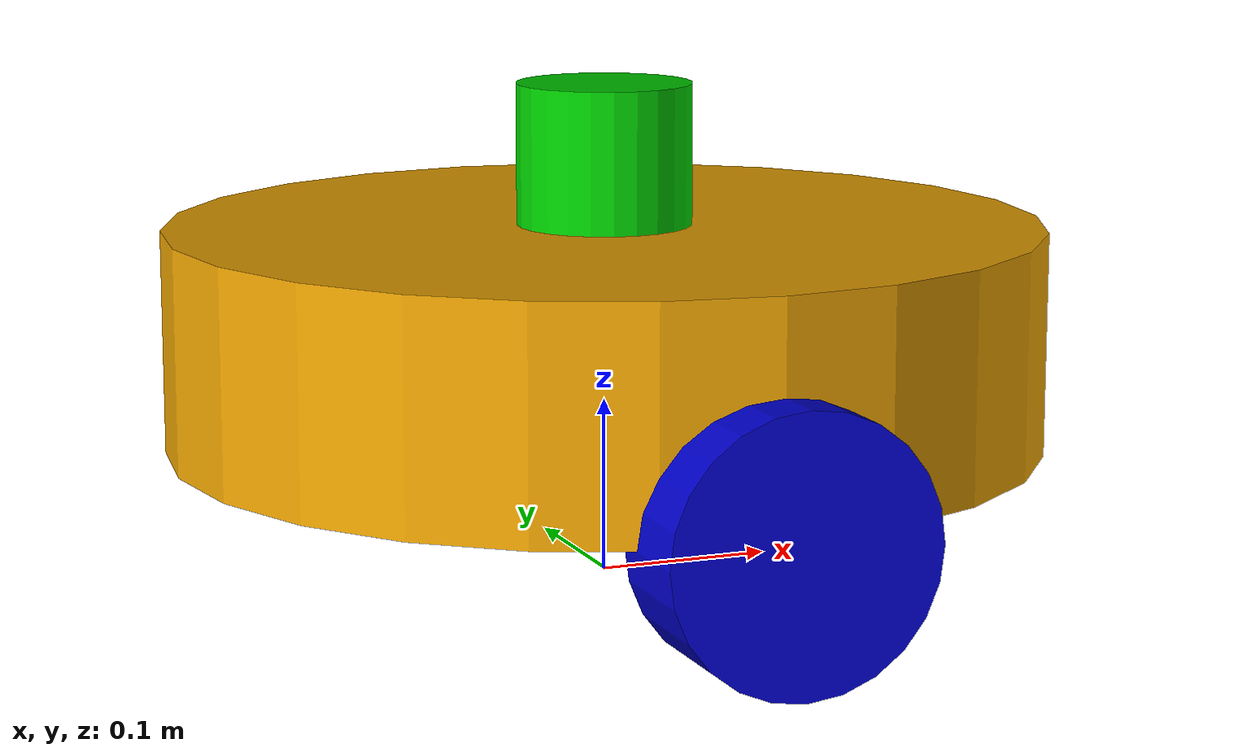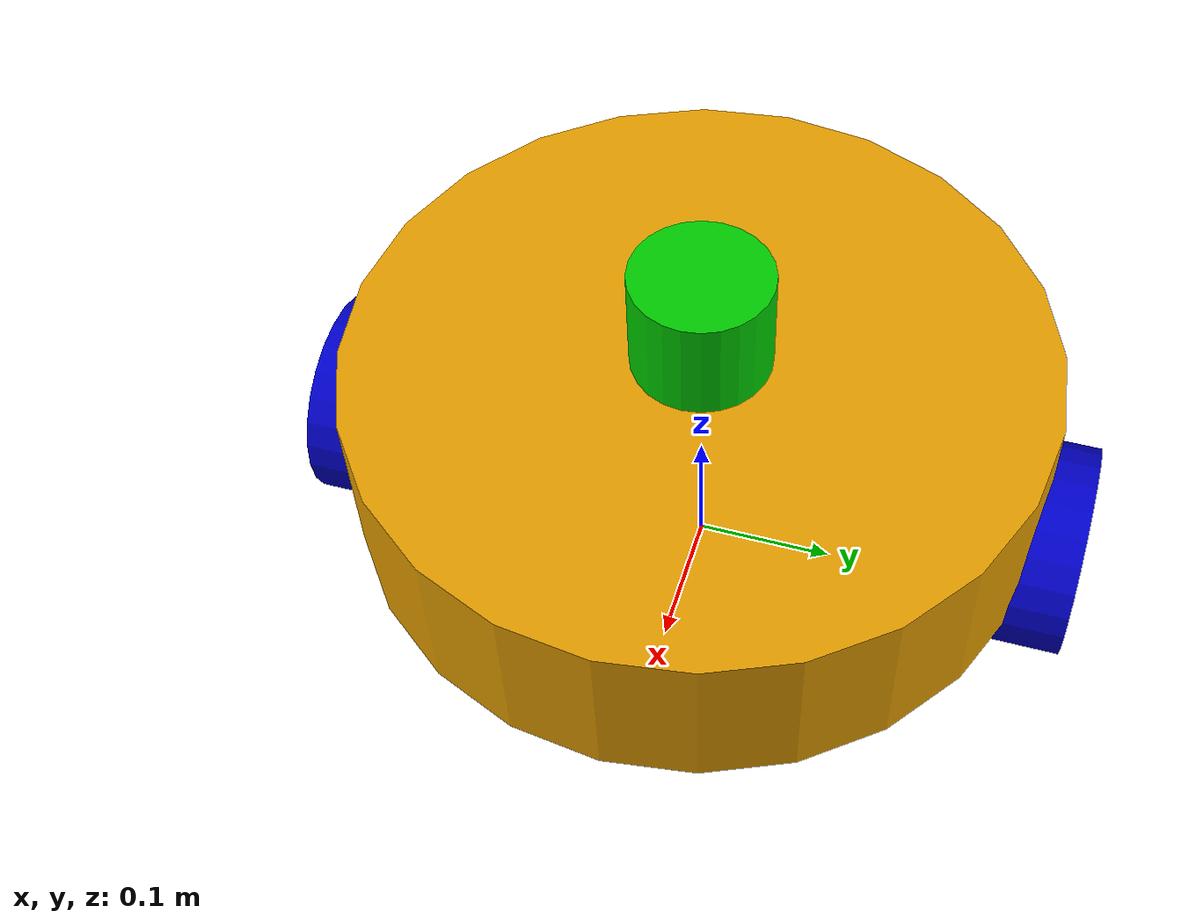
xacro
<?xml version="1.0"?>
<robot xmlns:xacro="http://www.ros.org/wiki/xacro" name="winter">

        <!-- gazebo -->
        <!--xacro:include filename="$(find winter_description)/urdf/winter.gazebo"/-->
        <xacro:property name="body_radius"      value=".25"/>
        <xacro:property name="body_height"      value=".127"/>

        <xacro:property name="wheel_separation" value="${body_radius*2}"/>
        <xacro:property name="wheel_radius"     value=".075"/>
        <xacro:property name="wheel_length"     value=".06"/>
        <xacro:property name="wheel_color"      value="0 0 .8 1"/>

        <xacro:property name="laser_height"     value=".08"/>
        <xacro:property name="laser_radius"     value=".05"/>

<!--base_link-->
        <link name="base_link">
                <visual>
                        <geometry>
                                <cylinder length="${body_height}" radius="${body_radius}"/>
                        </geometry>
                        <origin xyz="0 0 ${body_height/2+wheel_radius}"/>
                </visual>
                <collision>
                        <geometry>
                                <cylinder length="${body_height}" radius="${body_radius}"/>
                        </geometry>
                        <origin xyz="0 0 ${body_height/2+wheel_radius}"/>
                </collision>
        </link>

<!--laser_link-->
        <link name="laser_link">
                <visual>
                        <geometry>
                                <cylinder length="${laser_height}" radius="${laser_radius}"/>
                        </geometry>
                        <material name="green">
                                <color rgba="0 0.8 0 1"/>
                        </material>
                        <origin xyz="0 0 ${laser_height/2}"/>
                </visual>
                <collision>
                        <geometry>
                                <cylinder length="${laser_height}" radius="${laser_radius}"/>
                        </geometry>
                        <origin xyz="0 0 ${laser_height/2}"/>
                </collision>
        </link>
        <joint name="laser_link_to_base_link" type="fixed">
            <parent link="base_link"/>
            <child link="laser_link"/>
            <origin xyz="0 0 ${body_height+wheel_radius}"/>
        </joint>

<!-- left wheel-->
        <link name="left_wheel">
                <visual>
                        <geometry>
                                <cylinder length="${wheel_length}" radius="${wheel_radius}"/>
                        </geometry>
                        <material name="blue">
                                <color rgba="${wheel_color}"/>
                        </material>
                        <origin rpy="1.57075 0 0" xyz="0 0 0"/>
                </visual>
        </link>
        <joint name="left_wheel_to_base_link" type="continuous">
                <parent link="base_link"/>
                <child link="left_wheel"/>
                <origin xyz="0.0 ${wheel_separation/2} ${wheel_radius}"/>
                <axis xyz="0 1 0"/>
        </joint>
<!-- right wheel-->
        <link name="right_wheel">
                <visual>
                        <geometry>
                                <cylinder length="${wheel_length}" radius="${wheel_radius}"/>
                        </geometry>
                        <material name="blue">
                                <color rgba="${wheel_color}"/>
                        </material>
                        <origin rpy="1.57075 0 0" xyz="0 0 0"/>
                </visual>
        </link>
        <joint name="right_wheel_to_base_link" type="continuous">
                <parent link="base_link"/>
                <child link="right_wheel"/>
                <origin xyz="0.0 -${wheel_separation/2} ${wheel_radius}"/>
                <axis xyz="0 1 0"/>
        </joint>

</robot>
